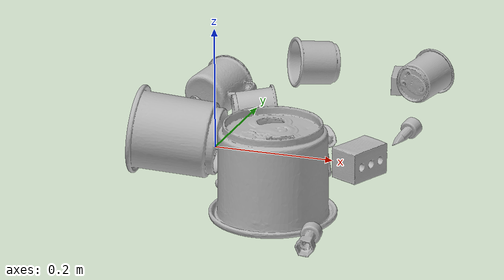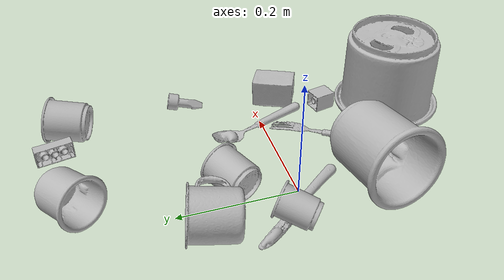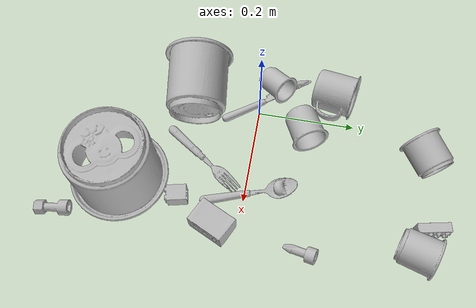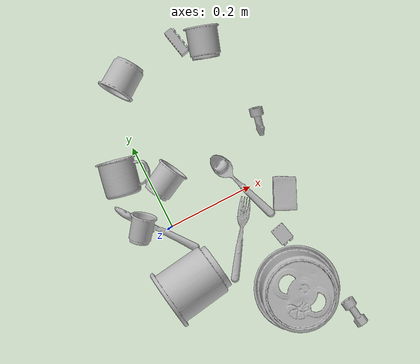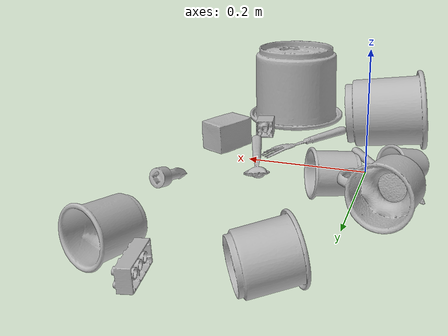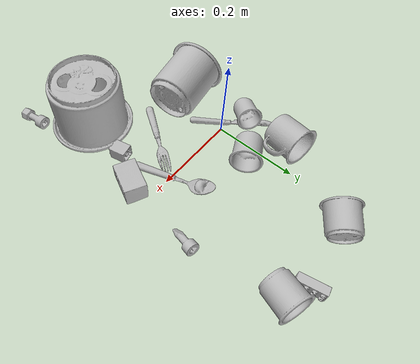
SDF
<sdf version="1.4">
  <world name="default">
    <light name="light1" type="point">
      <pose>0 0 1 0 0 0</pose>
      <diffuse>3 3 3 1</diffuse>
      <specular>3 3 3 1</specular>
    </light>
    <light name="light2" type="point">
      <pose>0 0.5 2 0 0 0</pose>
      <diffuse>1 1 1 1</diffuse>
      <specular>1 1 1 1</specular>
    </light>
    <light name="light3" type="point">
      <pose>0 0.5 2 0 0 0</pose>
      <diffuse>3 3 3 1</diffuse>
      <specular>3 3 3 1</specular>
    </light>
    <scene>
      <ambient>0.7 0.7 0.7</ambient>
    </scene>
    <model name="cup1">
      <link name="link_cup1">
        <collision name="default">
          <geometry>
            <mesh>
              <uri>model://e_cups/collision_meshes/collision.obj</uri>
              <scale>1.0 1.0 1.0</scale>
            </mesh>
          </geometry>
          <surface>
            <friction>
              <ode>
                <mu>0.5</mu>
                <mu2>0.5</mu2>
              </ode>
            </friction>
          <contact>
        <ode>
            <max_vel>0</max_vel>
            <min_depth>0.0001</min_depth>
            <kp>1e8</kp>
        </ode>
    </contact></surface>
        </collision>
        <visual name="default">
          <geometry>
            <mesh>
              <uri>model://e_cups/visual_meshes/visual.dae</uri>
              <scale>1.0 1.0 1.0</scale>
            </mesh>
          </geometry>
        </visual>
        <inertial>
          <mass>0.07679437845945358</mass>
          <pose>0.001135574304498732 0.002879783743992448 -0.0038829718250781298 0.6952411595659588 0.08767733322521654 -0.5235244631248706</pose>
          <inertia>
            <ixx>6.771342e-05</ixx>
            <iyy>7.077022e-05</iyy>
            <izz>6.4741864e-05</izz>
            <ixy>0</ixy>
            <ixz>0</ixz>
            <iyz>0</iyz>
          </inertia>
        </inertial>
      </link>
      <pose>0.03261984512209892 0.09844338893890381 0.03498271852731705 -1.4831622602304326 0.30419551514920834 -1.0705150412980782</pose>
    </model>
    <model name="silverware1">
      <link name="link_silverware1">
        <collision name="default">
          <geometry>
            <mesh>
              <uri>model://spoon/collision_meshes/collision.obj</uri>
              <scale>1.0 1.0 1.0</scale>
            </mesh>
          </geometry>
          <surface>
            <friction>
              <ode>
                <mu>0.5</mu>
                <mu2>0.5</mu2>
              </ode>
            </friction>
          <contact>
        <ode>
            <max_vel>0</max_vel>
            <min_depth>0.0001</min_depth>
            <kp>1e8</kp>
        </ode>
    </contact></surface>
        </collision>
        <visual name="default">
          <geometry>
            <mesh>
              <uri>model://spoon/visual_meshes/visual.dae</uri>
              <scale>1.0 1.0 1.0</scale>
            </mesh>
          </geometry>
        </visual>
        <inertial>
          <mass>0.015083584003150463</mass>
          <pose>-0.005526313092559576 -0.001603418029844761 -0.000727165665011853 0.035216710638299134 -0.03906584880684835 0.006150613179751253</pose>
          <inertia>
            <ixx>8.389734e-07</ixx>
            <iyy>5.739254e-05</iyy>
            <izz>5.7806283e-05</izz>
            <ixy>0</ixy>
            <ixz>0</ixz>
            <iyz>0</iyz>
          </inertia>
        </inertial>
      </link>
      <pose>0.1816857010126114 0.008678574115037918 0.00838526152074337 0.006731712826940389 0.026892989664009836 1.9098047993546494</pose>
    </model>
    <model name="cup2">
      <link name="link_cup2">
        <collision name="default">
          <geometry>
            <mesh>
              <uri>model://g_cups/collision_meshes/collision.obj</uri>
              <scale>1.0 1.0 1.0</scale>
            </mesh>
          </geometry>
          <surface>
            <friction>
              <ode>
                <mu>0.5</mu>
                <mu2>0.5</mu2>
              </ode>
            </friction>
          <contact>
        <ode>
            <max_vel>0</max_vel>
            <min_depth>0.0001</min_depth>
            <kp>1e8</kp>
        </ode>
    </contact></surface>
        </collision>
        <visual name="default">
          <geometry>
            <mesh>
              <uri>model://g_cups/visual_meshes/visual.dae</uri>
              <scale>1.0 1.0 1.0</scale>
            </mesh>
          </geometry>
        </visual>
        <inertial>
          <mass>0.04187431186437607</mass>
          <pose>-0.0007946277037262917 -4.2064348235726357e-05 -0.0021329382434487343 -0.21382305588888167 -0.31410659578681893 0.31120215507532384</pose>
          <inertia>
            <ixx>4.8876722e-05</ixx>
            <iyy>4.871046e-05</iyy>
            <izz>5.0627856e-05</izz>
            <ixy>0</ixy>
            <ixz>0</ixz>
            <iyz>0</iyz>
          </inertia>
        </inertial>
      </link>
      <pose>0.053633302450180054 0.34654465317726135 0.03992879390716553 1.1970763860477027 1.268414673780522 -1.320785057395014</pose>
    </model>
    <model name="silverware2">
      <link name="link_silverware2">
        <collision name="default">
          <geometry>
            <mesh>
              <uri>model://fork/collision_meshes/collision.obj</uri>
              <scale>1.0 1.0 1.0</scale>
            </mesh>
          </geometry>
          <surface>
            <friction>
              <ode>
                <mu>0.5</mu>
                <mu2>0.5</mu2>
              </ode>
            </friction>
          <contact>
        <ode>
            <max_vel>0</max_vel>
            <min_depth>0.0001</min_depth>
            <kp>1e8</kp>
        </ode>
    </contact></surface>
        </collision>
        <visual name="default">
          <geometry>
            <mesh>
              <uri>model://fork/visual_meshes/visual.dae</uri>
              <scale>1.0 1.0 1.0</scale>
            </mesh>
          </geometry>
        </visual>
        <inertial>
          <mass>0.025364622473716736</mass>
          <pose>-0.029570050537586212 0.00046588227269239724 0.00032188615296036005 -0.013551666838441594 -0.010977837199147297 0.014453899745261501</pose>
          <inertia>
            <ixx>8.8917335e-07</ixx>
            <iyy>6.621973e-05</iyy>
            <izz>6.661743e-05</izz>
            <ixy>0</ixy>
            <ixz>0</ixz>
            <iyz>0</iyz>
          </inertia>
        </inertial>
      </link>
      <pose>0.12374496459960938 -0.09673088788986206 0.007446606643497944 -3.0635100874438046 0.002835689817358241 0.9721315035612514</pose>
    </model>
    <model name="cup3">
      <link name="link_cup3">
        <collision name="default">
          <geometry>
            <mesh>
              <uri>model://f_cups/collision_meshes/collision.obj</uri>
              <scale>1.0 1.0 1.0</scale>
            </mesh>
          </geometry>
          <surface>
            <friction>
              <ode>
                <mu>0.5</mu>
                <mu2>0.5</mu2>
              </ode>
            </friction>
          <contact>
        <ode>
            <max_vel>0</max_vel>
            <min_depth>0.0001</min_depth>
            <kp>1e8</kp>
        </ode>
    </contact></surface>
        </collision>
        <visual name="default">
          <geometry>
            <mesh>
              <uri>model://f_cups/visual_meshes/visual.dae</uri>
              <scale>1.0 1.0 1.0</scale>
            </mesh>
          </geometry>
        </visual>
        <inertial>
          <mass>0.08338716626167297</mass>
          <pose>-0.0031714679207652807 -0.0006240069633349776 -0.003655536798760295 0.7862348245142414 -0.2607950949044878 -0.18237232658982702</pose>
          <inertia>
            <ixx>7.838616e-05</ixx>
            <iyy>8.222797e-05</iyy>
            <izz>8.560161e-05</izz>
            <ixy>0</ixy>
            <ixz>0</ixz>
            <iyz>0</iyz>
          </inertia>
        </inertial>
      </link>
      <pose>0.25211668014526367 0.3366979956626892 0.0372898243367672 1.149218269956838 -1.3380832665610178 -3.036184282075193</pose>
    </model>
    <model name="silverware3">
      <link name="link_silverware3">
        <collision name="default">
          <geometry>
            <mesh>
              <uri>model://knife/collision_meshes/collision.obj</uri>
              <scale>1.0 1.0 1.0</scale>
            </mesh>
          </geometry>
          <surface>
            <friction>
              <ode>
                <mu>0.5</mu>
                <mu2>0.5</mu2>
              </ode>
            </friction>
          <contact>
        <ode>
            <max_vel>0</max_vel>
            <min_depth>0.0001</min_depth>
            <kp>1e8</kp>
        </ode>
    </contact></surface>
        </collision>
        <visual name="default">
          <geometry>
            <mesh>
              <uri>model://knife/visual_meshes/visual.dae</uri>
              <scale>1.0 1.0 1.0</scale>
            </mesh>
          </geometry>
        </visual>
        <inertial>
          <mass>0.015509607270359993</mass>
          <pose>-0.02378525398671627 0.0015275129117071629 5.0620248657651246e-05 0.07305981518176793 0.01724841487141605 -0.0074098192082968535</pose>
          <inertia>
            <ixx>4.4022548e-07</ixx>
            <iyy>5.95854e-05</iyy>
            <izz>5.9727172e-05</izz>
            <ixy>0</ixy>
            <ixz>0</ixz>
            <iyz>0</iyz>
          </inertia>
        </inertial>
      </link>
      <pose>-0.03526977449655533 0.010623618960380554 0.00583611149340868 2.8837159320268557 0.02550353577585174 2.2265427512331377</pose>
    </model>
    <model name="cup4">
      <link name="link_cup4">
        <collision name="default">
          <geometry>
            <mesh>
              <uri>model://d_cups/collision_meshes/collision.obj</uri>
              <scale>2.0 2.0 2.0</scale>
            </mesh>
          </geometry>
          <surface>
            <friction>
              <ode>
                <mu>0.5</mu>
                <mu2>0.5</mu2>
              </ode>
            </friction>
          <contact>
        <ode>
            <max_vel>0</max_vel>
            <min_depth>0.0001</min_depth>
            <kp>1e8</kp>
        </ode>
    </contact></surface>
        </collision>
        <visual name="default">
          <geometry>
            <mesh>
              <uri>model://d_cups/visual_meshes/visual.dae</uri>
              <scale>2.0 2.0 2.0</scale>
            </mesh>
          </geometry>
        </visual>
        <inertial>
          <mass>0.5481204390525818</mass>
          <pose>0.001613611588254571 0.0038234798703342676 -0.0045333015732467175 0.2401214667218237 -0.2470996070340832 0.5942599316130982</pose>
          <inertia>
            <ixx>0.001835623</ixx>
            <iyy>0.0018303102</iyy>
            <izz>0.0016615508</izz>
            <ixy>0</ixy>
            <ixz>0</ixz>
            <iyz>0</iyz>
          </inertia>
        </inertial>
      </link>
      <pose>-0.012225146405398846 -0.1319887340068817 0.06494177132844925 -1.4717662474701574 0.2542411358340132 1.7371230246618357</pose>
    </model>
    <model name="cup41">
      <link name="link_cup41">
        <collision name="default">
          <geometry>
            <mesh>
              <uri>model://b_cups/collision_meshes/collision.obj</uri>
              <scale>1.0 1.0 1.0</scale>
            </mesh>
          </geometry>
          <surface>
            <friction>
              <ode>
                <mu>0.5</mu>
                <mu2>0.5</mu2>
              </ode>
            </friction>
          <contact>
        <ode>
            <max_vel>0</max_vel>
            <min_depth>0.0001</min_depth>
            <kp>1e8</kp>
        </ode>
    </contact></surface>
        </collision>
        <visual name="default">
          <geometry>
            <mesh>
              <uri>model://b_cups/visual_meshes/visual.dae</uri>
              <scale>1.0 1.0 1.0</scale>
            </mesh>
          </geometry>
        </visual>
        <inertial>
          <mass>0.04462150111794472</mass>
          <pose>0.0005182005697861314 0.0018058601999655366 -0.0013381819007918239 0.11356336410280554 0.038725039404113405 -0.3456939711537357</pose>
          <inertia>
            <ixx>2.9207904e-05</ixx>
            <iyy>2.8653376e-05</iyy>
            <izz>2.45779e-05</izz>
            <ixy>0</ixy>
            <ixz>0</ixz>
            <iyz>0</iyz>
          </inertia>
        </inertial>
      </link>
      <pose>-0.06276305019855499 0.025777781382203102 0.030485210940241814 -1.2879309409877158 0.5350261185926575 -0.533684066681137</pose>
    </model>
    <model name="cup5">
      <link name="link_cup5">
        <collision name="default">
          <geometry>
            <mesh>
              <uri>model://i_cups/collision_meshes/collision.obj</uri>
              <scale>2.0 2.0 2.0</scale>
            </mesh>
          </geometry>
          <surface>
            <friction>
              <ode>
                <mu>0.5</mu>
                <mu2>0.5</mu2>
              </ode>
            </friction>
          <contact>
        <ode>
            <max_vel>0</max_vel>
            <min_depth>0.0001</min_depth>
            <kp>1e8</kp>
        </ode>
    </contact></surface>
        </collision>
        <visual name="default">
          <geometry>
            <mesh>
              <uri>model://i_cups/visual_meshes/visual.dae</uri>
              <scale>2.0 2.0 2.0</scale>
            </mesh>
          </geometry>
        </visual>
        <inertial>
          <mass>0.7183689475059509</mass>
          <pose>0.00022480347251985222 0.0003359461552463472 -0.0017158043337985873 -0.028983189607302198 -0.03987301698166741 -0.34590760218104494</pose>
          <inertia>
            <ixx>0.0039783698</ixx>
            <iyy>0.004013422</iyy>
            <izz>0.0044464725</izz>
            <ixy>0</ixy>
            <ixz>0</ixz>
            <iyz>0</iyz>
          </inertia>
        </inertial>
      </link>
      <pose>0.18855978548526764 -0.25417718291282654 0.07586600631475449 3.141592627091894 1.5705557801614014e-07 2.4308643610111025</pose>
    </model>
    <model name="cup51">
      <link name="link_cup51">
        <collision name="default">
          <geometry>
            <mesh>
              <uri>model://mug/collision_meshes/collision.obj</uri>
              <scale>1.0 1.0 1.0</scale>
            </mesh>
          </geometry>
          <surface>
            <friction>
              <ode>
                <mu>0.5</mu>
                <mu2>0.5</mu2>
              </ode>
            </friction>
          <contact>
        <ode>
            <max_vel>0</max_vel>
            <min_depth>0.0001</min_depth>
            <kp>1e8</kp>
        </ode>
    </contact></surface>
        </collision>
        <visual name="default">
          <geometry>
            <mesh>
              <uri>model://mug/visual_meshes/visual.dae</uri>
              <scale>1.0 1.0 1.0</scale>
            </mesh>
          </geometry>
        </visual>
        <inertial>
          <mass>0.1239403635263443</mass>
          <pose>0.009571672417223454 0.0008143244776874781 -0.01094733364880085 -0.12983126758676797 0.08737752450174939 0.055073145905888306</pose>
          <inertia>
            <ixx>0.0001231125</ixx>
            <iyy>0.00013750937</iyy>
            <izz>0.00015903146</izz>
            <ixy>0</ixy>
            <ixz>0</ixz>
            <iyz>0</iyz>
          </inertia>
        </inertial>
      </link>
      <pose>-0.041287537664175034 0.1479930579662323 0.044403623789548874 1.478417773465871 0.1464296380245386 2.913533258700321</pose>
    </model>
    <model name="toy1">
      <link name="link_toy1">
        <collision name="default">
          <geometry>
            <mesh>
              <uri>model://e_toy_airplane/collision_meshes/collision.obj</uri>
              <scale>1.0 1.0 1.0</scale>
            </mesh>
          </geometry>
          <surface>
            <friction>
              <ode>
                <mu>0.5</mu>
                <mu2>0.5</mu2>
              </ode>
            </friction>
          <contact>
        <ode>
            <max_vel>0</max_vel>
            <min_depth>0.0001</min_depth>
            <kp>1e8</kp>
        </ode>
    </contact></surface>
        </collision>
        <visual name="default">
          <geometry>
            <mesh>
              <uri>model://e_toy_airplane/visual_meshes/visual.dae</uri>
              <scale>1.0 1.0 1.0</scale>
            </mesh>
          </geometry>
        </visual>
        <inertial>
          <mass>0.022831259295344353</mass>
          <pose>0.00011740475019905716 -2.2482799977296963e-05 -0.011187204159796238 0.005518483498250157 0.009228324176637706 0.15041338923558414</pose>
          <inertia>
            <ixx>6.9683606e-06</ixx>
            <iyy>6.897077e-06</iyy>
            <izz>2.0942666e-06</izz>
            <ixy>0</ixy>
            <ixz>0</ixz>
            <iyz>0</iyz>
          </inertia>
        </inertial>
      </link>
      <pose>0.2832892835140228 0.12287083268165588 0.011467606760561466 -2.0417085080877113 -1.0864434833263545 -2.9418010446665495</pose>
    </model>
    <model name="toy2">
      <link name="link_toy2">
        <collision name="default">
          <geometry>
            <mesh>
              <uri>model://c_toy_airplane/collision_meshes/collision.obj</uri>
              <scale>1.0 1.0 1.0</scale>
            </mesh>
          </geometry>
          <surface>
            <friction>
              <ode>
                <mu>0.5</mu>
                <mu2>0.5</mu2>
              </ode>
            </friction>
          <contact>
        <ode>
            <max_vel>0</max_vel>
            <min_depth>0.0001</min_depth>
            <kp>1e8</kp>
        </ode>
    </contact></surface>
        </collision>
        <visual name="default">
          <geometry>
            <mesh>
              <uri>model://c_toy_airplane/visual_meshes/visual.dae</uri>
              <scale>1.0 1.0 1.0</scale>
            </mesh>
          </geometry>
        </visual>
        <inertial>
          <mass>0.014964861795306206</mass>
          <pose>-0.00023024252732284367 -4.4292315237726143e-07 -0.006080531980842352 -0.006193085961310731 -0.016797608001683555 0.7655123908688324</pose>
          <inertia>
            <ixx>6.871557e-06</ixx>
            <iyy>6.852165e-06</iyy>
            <izz>1.6133057e-06</izz>
            <ixy>0</ixy>
            <ixz>0</ixz>
            <iyz>0</iyz>
          </inertia>
        </inertial>
      </link>
      <pose>0.2809981405735016 -0.3610187768936157 0.015013555996119976 -1.615737754411861 -0.916999128114294 -2.973213773020245</pose>
    </model>
    <model name="toy3">
      <link name="link_toy3">
        <collision name="default">
          <geometry>
            <mesh>
              <uri>model://c_lego_duplo/collision_meshes/collision.obj</uri>
              <scale>1.0 1.0 1.0</scale>
            </mesh>
          </geometry>
          <surface>
            <friction>
              <ode>
                <mu>0.5</mu>
                <mu2>0.5</mu2>
              </ode>
            </friction>
          <contact>
        <ode>
            <max_vel>0</max_vel>
            <min_depth>0.0001</min_depth>
            <kp>1e8</kp>
        </ode>
    </contact></surface>
        </collision>
        <visual name="default">
          <geometry>
            <mesh>
              <uri>model://c_lego_duplo/visual_meshes/visual.dae</uri>
              <scale>1.0 1.0 1.0</scale>
            </mesh>
          </geometry>
        </visual>
        <inertial>
          <mass>0.043811071664094925</mass>
          <pose>0.00031645968556404114 0.00019464633078314364 0.0010453150607645512 -0.011520790971684333 0.005900079198968262 0.031100329952374963</pose>
          <inertia>
            <ixx>1.685932e-05</ixx>
            <iyy>5.3854724e-06</iyy>
            <izz>1.970185e-05</izz>
            <ixy>0</ixy>
            <ixz>0</ixz>
            <iyz>0</iyz>
          </inertia>
        </inertial>
      </link>
      <pose>0.20055200159549713 0.36741551756858826 0.016251640394330025 2.0720434114463147 -1.544783378608991 1.2760017806144526</pose>
    </model>
    <model name="toy4">
      <link name="link_toy4">
        <collision name="default">
          <geometry>
            <mesh>
              <uri>model://foam_brick/collision_meshes/collision.obj</uri>
              <scale>1.0 1.0 1.0</scale>
            </mesh>
          </geometry>
          <surface>
            <friction>
              <ode>
                <mu>0.5</mu>
                <mu2>0.5</mu2>
              </ode>
            </friction>
          <contact>
        <ode>
            <max_vel>0</max_vel>
            <min_depth>0.0001</min_depth>
            <kp>1e8</kp>
        </ode>
    </contact></surface>
        </collision>
        <visual name="default">
          <geometry>
            <mesh>
              <uri>model://foam_brick/visual_meshes/visual.dae</uri>
              <scale>1.0 1.0 1.0</scale>
            </mesh>
          </geometry>
        </visual>
        <inertial>
          <mass>0.278400182723999</mass>
          <pose>-0.0002522472059354186 0.00034584358218126 -0.0002532101352699101 -0.2940175595239471 0.01727444673583901 -0.0007449899720057078</pose>
          <inertia>
            <ixx>0.00012161039</ixx>
            <iyy>0.00019415727</iyy>
            <izz>0.00019662478</izz>
            <ixy>0</ixy>
            <ixz>0</ixz>
            <iyz>0</iyz>
          </inertia>
        </inertial>
      </link>
      <pose>0.2609354555606842 -0.0479898564517498 0.025910690426826477 1.5828207389189302 -0.0003756810751079396 1.1381693816217393</pose>
    </model>
    <model name="toy5">
      <link name="link_toy5">
        <collision name="default">
          <geometry>
            <mesh>
              <uri>model://f_lego_duplo/collision_meshes/collision.obj</uri>
              <scale>1.0 1.0 1.0</scale>
            </mesh>
          </geometry>
          <surface>
            <friction>
              <ode>
                <mu>0.5</mu>
                <mu2>0.5</mu2>
              </ode>
            </friction>
          <contact>
        <ode>
            <max_vel>0</max_vel>
            <min_depth>0.0001</min_depth>
            <kp>1e8</kp>
        </ode>
    </contact></surface>
        </collision>
        <visual name="default">
          <geometry>
            <mesh>
              <uri>model://f_lego_duplo/visual_meshes/visual.dae</uri>
              <scale>1.0 1.0 1.0</scale>
            </mesh>
          </geometry>
        </visual>
        <inertial>
          <mass>0.033785246312618256</mass>
          <pose>2.369392132095527e-05 0.00013393175322562456 0.0018837875686585903 0.029838526741840128 -0.014425189077584645 -0.6756601169838921</pose>
          <inertia>
            <ixx>7.139008e-06</ixx>
            <iyy>7.202609e-06</iyy>
            <izz>6.1969613e-06</izz>
            <ixy>0</ixy>
            <ixz>0</ixz>
            <iyz>0</iyz>
          </inertia>
        </inertial>
      </link>
      <pose>0.21491436660289764 -0.13038209080696106 0.016206661239266396 1.5789524683819363 0.0001537157337961707 0.22719651957252052</pose>
    </model>
  <physics type="ode">
      <max_contacts>50</max_contacts>
      <ode>
        <solver>
          <type>quick</type>
          <iters>75</iters>
        </solver>
        <constraints>
          <contact_max_correcting_vel>0</contact_max_correcting_vel>
          <contact_surface_layer>0</contact_surface_layer>
        </constraints>
      </ode>
    </physics></world>
</sdf>
